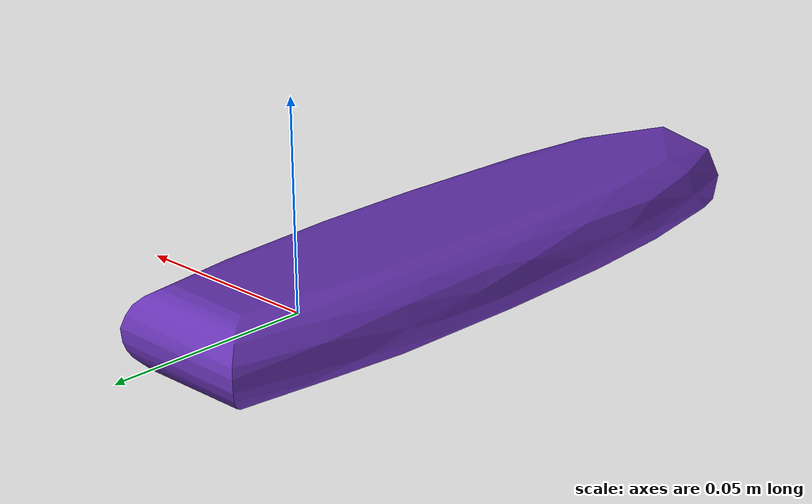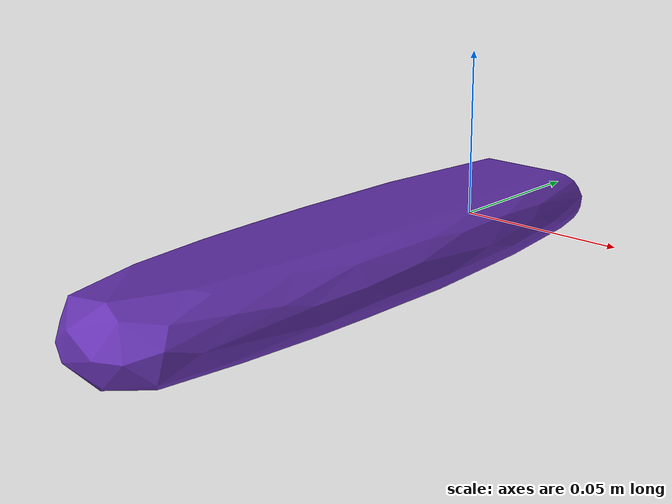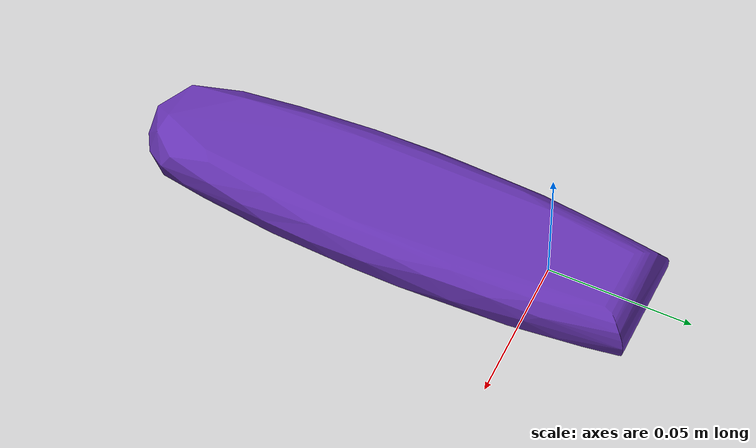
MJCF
<mujoco model="top_watertight_tiny">
  <default>
    <default group="2" type="mesh" contype="0" conaffinity="0">
      <geom group="2" type="mesh" contype="0" conaffinity="0"/>
    </default>
    <default group="3" type="mesh">
      <geom group="3" type="mesh"/>
    </default>
  </default>
  <asset>
    <mesh file="top_watertight_tiny.obj"/>
    <mesh file="top_watertight_tiny_collision_0.obj"/>
  </asset>
  <worldbody>
    <body name="top_watertight_tiny">
      <freejoint/>
      <geom mesh="top_watertight_tiny" group="2" type="mesh" rgba="0.4 0.2 0.7 1" contype="0" conaffinity="0"/>
      <geom mesh="top_watertight_tiny_collision_0" rgba="0.03987860688636413 0.29047131024607076 0.5864105927071652 1" group="3" type="mesh"/>
    </body>
  </worldbody>
</mujoco>
